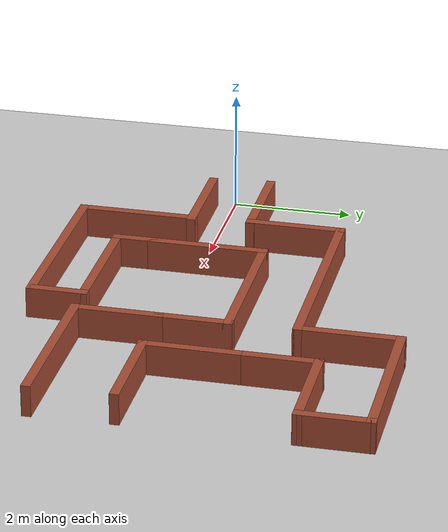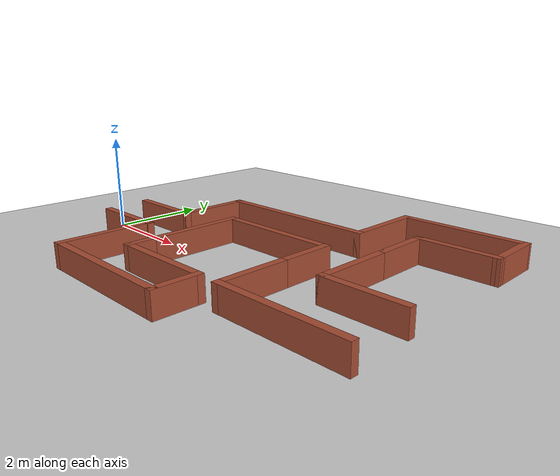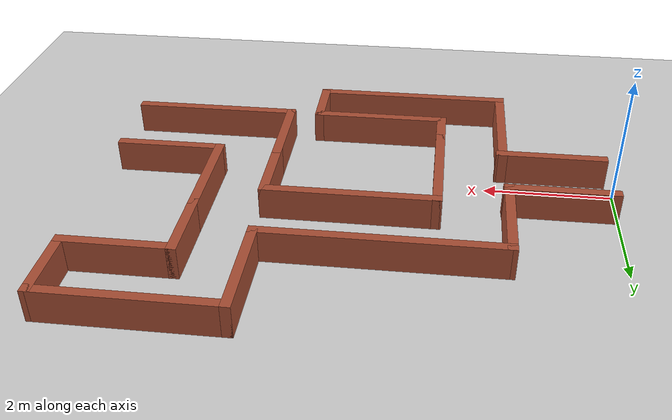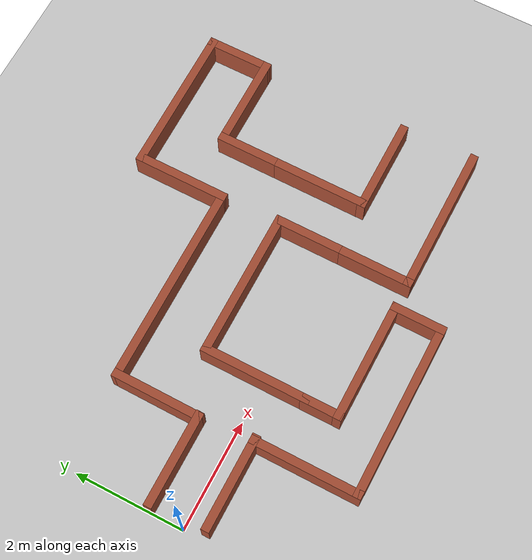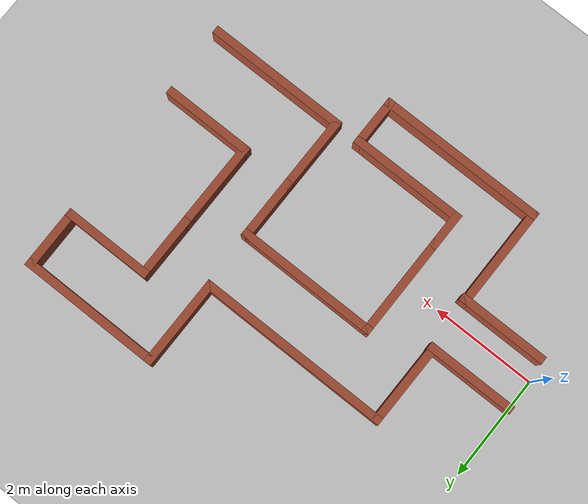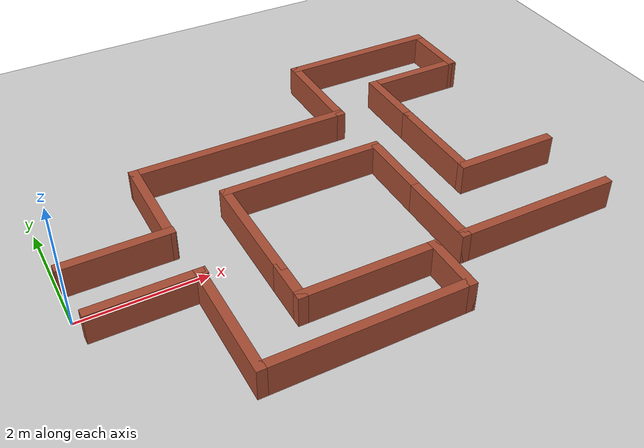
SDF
<sdf version="1.4">
  <world name="default">

    <scene>
      <ambient>0.4 0.4 0.4 1</ambient>
      <background>0.7 0.7 0.7 1</background>
      <shadows>true</shadows>
    </scene>

    <!-- A global light source -->
    <include>
      <uri>model://sun</uri>
    </include>

    <!-- A ground plane -->
    <include>
      <uri>model://ground_plane</uri>
    </include>

   <include>
      <uri>model://task3</uri>
      <pose> 4 0.75 0 0 0 0</pose>
      <scale>1 1 1</scale>
    </include>

    <physics type="ode">
      <real_time_update_rate>1000.0</real_time_update_rate>
      <max_step_size>0.001</max_step_size>
      <real_time_factor>1</real_time_factor>
      <ode>
        <solver>
          <type>quick</type>
          <iters>150</iters>
          <precon_iters>0</precon_iters>
          <sor>1.400000</sor>
          <use_dynamic_moi_rescaling>1</use_dynamic_moi_rescaling>
        </solver>
        <constraints>
          <cfm>0.00001</cfm>
          <erp>0.2</erp>
          <contact_max_correcting_vel>2000.000000</contact_max_correcting_vel>
          <contact_surface_layer>0.01000</contact_surface_layer>
        </constraints>
      </ode>
    </physics>
  </world>

</sdf>

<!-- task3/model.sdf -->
<sdf version='1.6'>
  <model name='task3'>
    <pose frame=''>3.76832 0.751116 0 0 -0 0</pose>
    <link name='Wall_0'>
      <collision name='Wall_0_Collision'>
        <geometry>
          <box>
            <size>1.75 0.15 1</size>
          </box>
        </geometry>
        <pose frame=''>0 0 0 0 -0 0</pose>
      </collision>
      <visual name='Wall_0_Visual'>
        <pose frame=''>0 0 0 0 -0 0</pose>
        <geometry>
          <box>
            <size>1.75 0.15 1</size>
          </box>
        </geometry>
        <material>
          <script>
            <uri>file://media/materials/scripts/gazebo.material</uri>
            <name>Gazebo/Bricks</name>
          </script>
          <ambient>1 1 1 1</ambient>
        </material>
        <meta>
          <layer>0</layer>
        </meta>
      </visual>
      <pose frame=''>-3.12832 -0.131116 0 0 -0 0</pose>
    </link>
    <link name='Wall_10'>
      <collision name='Wall_10_Collision'>
        <geometry>
          <box>
            <size>2 0.15 1</size>
          </box>
        </geometry>
        <pose frame=''>0 0 0 0 -0 0</pose>
      </collision>
      <visual name='Wall_10_Visual'>
        <pose frame=''>0 0 0 0 -0 0</pose>
        <geometry>
          <box>
            <size>2 0.15 1</size>
          </box>
        </geometry>
        <material>
          <script>
            <uri>file://media/materials/scripts/gazebo.material</uri>
            <name>Gazebo/Bricks</name>
          </script>
          <ambient>1 1 1 1</ambient>
        </material>
        <meta>
          <layer>0</layer>
        </meta>
      </visual>
      <pose frame=''>-1.27168 -0.614224 0 0 -0 1.5708</pose>
    </link>
    <link name='Wall_11'>
      <collision name='Wall_11_Collision'>
        <geometry>
          <box>
            <size>2.75 0.15 1</size>
          </box>
        </geometry>
        <pose frame=''>0 0 0 0 -0 0</pose>
      </collision>
      <visual name='Wall_11_Visual'>
        <pose frame=''>0 0 0 0 -0 0</pose>
        <geometry>
          <box>
            <size>2.75 0.15 1</size>
          </box>
        </geometry>
        <material>
          <script>
            <uri>file://media/materials/scripts/gazebo.material</uri>
            <name>Gazebo/Bricks</name>
          </script>
          <ambient>1 1 1 1</ambient>
        </material>
        <meta>
          <layer>0</layer>
        </meta>
      </visual>
      <pose frame=''>0.028318 0.310776 0 0 -0 0</pose>
    </link>
    <link name='Wall_12'>
      <collision name='Wall_12_Collision'>
        <geometry>
          <box>
            <size>1.25 0.15 1</size>
          </box>
        </geometry>
        <pose frame=''>0 0 0 0 -0 0</pose>
      </collision>
      <visual name='Wall_12_Visual'>
        <pose frame=''>0 0 0 0 -0 0</pose>
        <geometry>
          <box>
            <size>1.25 0.15 1</size>
          </box>
        </geometry>
        <material>
          <script>
            <uri>file://media/materials/scripts/gazebo.material</uri>
            <name>Gazebo/Bricks</name>
          </script>
          <ambient>1 1 1 1</ambient>
        </material>
        <meta>
          <layer>0</layer>
        </meta>
      </visual>
      <pose frame=''>1.32832 -0.239224 0 0 -0 -1.5708</pose>
    </link>
    <link name='Wall_14'>
      <collision name='Wall_14_Collision'>
        <geometry>
          <box>
            <size>1.75 0.15 1</size>
          </box>
        </geometry>
        <pose frame=''>0 0 0 0 -0 0</pose>
      </collision>
      <visual name='Wall_14_Visual'>
        <pose frame=''>0 0 0 0 -0 0</pose>
        <geometry>
          <box>
            <size>1.75 0.15 1</size>
          </box>
        </geometry>
        <material>
          <script>
            <uri>file://media/materials/scripts/gazebo.material</uri>
            <name>Gazebo/Bricks</name>
          </script>
          <ambient>1 1 1 1</ambient>
        </material>
        <meta>
          <layer>0</layer>
        </meta>
      </visual>
      <pose frame=''>2.27832 -0.009224 0 0 -0 1.5708</pose>
    </link>
    <link name='Wall_16'>
      <collision name='Wall_16_Collision'>
        <geometry>
          <box>
            <size>1.67003 0.15 1</size>
          </box>
        </geometry>
        <pose frame=''>0 0 0 0 -0 0</pose>
      </collision>
      <visual name='Wall_16_Visual'>
        <pose frame=''>0 0 0 0 -0 0</pose>
        <geometry>
          <box>
            <size>1.67003 0.15 1</size>
          </box>
        </geometry>
        <material>
          <script>
            <uri>file://media/materials/scripts/gazebo.material</uri>
            <name>Gazebo/Bricks</name>
          </script>
          <ambient>1 1 1 1</ambient>
        </material>
        <meta>
          <layer>0</layer>
        </meta>
      </visual>
      <pose frame=''>-2.33332 0.628884 0 0 -0 1.56422</pose>
    </link>
    <link name='Wall_17'>
      <collision name='Wall_17_Collision'>
        <geometry>
          <box>
            <size>3.75 0.15 1</size>
          </box>
        </geometry>
        <pose frame=''>0 0 0 0 -0 0</pose>
      </collision>
      <visual name='Wall_17_Visual'>
        <pose frame=''>0 0 0 0 -0 0</pose>
        <geometry>
          <box>
            <size>3.75 0.15 1</size>
          </box>
        </geometry>
        <material>
          <script>
            <uri>file://media/materials/scripts/gazebo.material</uri>
            <name>Gazebo/Bricks</name>
          </script>
          <ambient>1 1 1 1</ambient>
        </material>
        <meta>
          <layer>0</layer>
        </meta>
      </visual>
      <pose frame=''>-0.528318 1.38888 0 0 -0 0</pose>
    </link>
    <link name='Wall_18'>
      <collision name='Wall_18_Collision'>
        <geometry>
          <box>
            <size>1.75 0.15 1</size>
          </box>
        </geometry>
        <pose frame=''>0 0 0 0 -0 0</pose>
      </collision>
      <visual name='Wall_18_Visual'>
        <pose frame=''>0 0 0 0 -0 0</pose>
        <geometry>
          <box>
            <size>1.75 0.15 1</size>
          </box>
        </geometry>
        <material>
          <script>
            <uri>file://media/materials/scripts/gazebo.material</uri>
            <name>Gazebo/Bricks</name>
          </script>
          <ambient>1 1 1 1</ambient>
        </material>
        <meta>
          <layer>0</layer>
        </meta>
      </visual>
      <pose frame=''>1.27168 2.18888 0 0 -0 1.5708</pose>
    </link>
    <link name='Wall_19'>
      <collision name='Wall_19_Collision'>
        <geometry>
          <box>
            <size>2.75 0.15 1</size>
          </box>
        </geometry>
        <pose frame=''>0 0 0 0 -0 0</pose>
      </collision>
      <visual name='Wall_19_Visual'>
        <pose frame=''>0 0 0 0 -0 0</pose>
        <geometry>
          <box>
            <size>2.75 0.15 1</size>
          </box>
        </geometry>
        <material>
          <script>
            <uri>file://media/materials/scripts/gazebo.material</uri>
            <name>Gazebo/Bricks</name>
          </script>
          <ambient>1 1 1 1</ambient>
        </material>
        <meta>
          <layer>0</layer>
        </meta>
      </visual>
      <pose frame=''>2.57168 2.98888 0 0 -0 0</pose>
    </link>
    <link name='Wall_2'>
      <collision name='Wall_2_Collision'>
        <geometry>
          <box>
            <size>1.75 0.15 1</size>
          </box>
        </geometry>
        <pose frame=''>0 0 0 0 -0 0</pose>
      </collision>
      <visual name='Wall_2_Visual'>
        <pose frame=''>0 0 0 0 -0 0</pose>
        <geometry>
          <box>
            <size>1.75 0.15 1</size>
          </box>
        </geometry>
        <material>
          <script>
            <uri>file://media/materials/scripts/gazebo.material</uri>
            <name>Gazebo/Bricks</name>
          </script>
          <ambient>1 1 1 1</ambient>
        </material>
        <meta>
          <layer>0</layer>
        </meta>
      </visual>
      <pose frame=''>-3.04168 -1.11922 0 0 -0 0</pose>
    </link>
    <link name='Wall_22'>
      <collision name='Wall_22_Collision'>
        <geometry>
          <box>
            <size>1.25 0.15 1</size>
          </box>
        </geometry>
        <pose frame=''>0 0 0 0 -0 0</pose>
      </collision>
      <visual name='Wall_22_Visual'>
        <pose frame=''>0 0 0 0 -0 0</pose>
        <geometry>
          <box>
            <size>1.25 0.15 1</size>
          </box>
        </geometry>
        <material>
          <script>
            <uri>file://media/materials/scripts/gazebo.material</uri>
            <name>Gazebo/Bricks</name>
          </script>
          <ambient>1 1 1 1</ambient>
        </material>
        <meta>
          <layer>0</layer>
        </meta>
      </visual>
      <pose frame=''>2.27832 1.36078 0 0 -0 1.5708</pose>
    </link>
    <link name='Wall_23'>
      <collision name='Wall_23_Collision'>
        <geometry>
          <box>
            <size>1.75 0.15 1</size>
          </box>
        </geometry>
        <pose frame=''>0 0 0 0 -0 0</pose>
      </collision>
      <visual name='Wall_23_Visual'>
        <pose frame=''>0 0 0 0 -0 0</pose>
        <geometry>
          <box>
            <size>1.75 0.15 1</size>
          </box>
        </geometry>
        <material>
          <script>
            <uri>file://media/materials/scripts/gazebo.material</uri>
            <name>Gazebo/Bricks</name>
          </script>
          <ambient>1 1 1 1</ambient>
        </material>
        <meta>
          <layer>0</layer>
        </meta>
      </visual>
      <pose frame=''>3.07832 1.91078 0 0 -0 0</pose>
    </link>
    <link name='Wall_25'>
      <collision name='Wall_25_Collision'>
        <geometry>
          <box>
            <size>1.22813 0.15 1</size>
          </box>
        </geometry>
        <pose frame=''>0 0 0 0 -0 0</pose>
      </collision>
      <visual name='Wall_25_Visual'>
        <pose frame=''>0 0 0 0 -0 0</pose>
        <geometry>
          <box>
            <size>1.22813 0.15 1</size>
          </box>
        </geometry>
        <material>
          <script>
            <uri>file://media/materials/scripts/gazebo.material</uri>
            <name>Gazebo/Bricks</name>
          </script>
          <ambient>1 1 1 1</ambient>
        </material>
        <meta>
          <layer>0</layer>
        </meta>
      </visual>
      <pose frame=''>3.875 2.44983 0 0 -0 -1.56464</pose>
    </link>
    <link name='Wall_27'>
      <collision name='Wall_27_Collision'>
        <geometry>
          <box>
            <size>1.5 0.15 1</size>
          </box>
        </geometry>
        <pose frame=''>0 0 0 0 -0 0</pose>
      </collision>
      <visual name='Wall_27_Visual'>
        <pose frame=''>0 0 0 0 -0 0</pose>
        <geometry>
          <box>
            <size>1.5 0.15 1</size>
          </box>
        </geometry>
        <material>
          <script>
            <uri>file://media/materials/scripts/gazebo.material</uri>
            <name>Gazebo/Bricks</name>
          </script>
          <ambient>1 1 1 1</ambient>
        </material>
        <meta>
          <layer>0</layer>
        </meta>
      </visual>
      <pose frame=''>1.32832 -1.46422 0 0 -0 -1.5708</pose>
    </link>
    <link name='Wall_28'>
      <collision name='Wall_28_Collision'>
        <geometry>
          <box>
            <size>2.75 0.15 1</size>
          </box>
        </geometry>
        <pose frame=''>0 0 0 0 -0 0</pose>
      </collision>
      <visual name='Wall_28_Visual'>
        <pose frame=''>0 0 0 0 -0 0</pose>
        <geometry>
          <box>
            <size>2.75 0.15 1</size>
          </box>
        </geometry>
        <material>
          <script>
            <uri>file://media/materials/scripts/gazebo.material</uri>
            <name>Gazebo/Bricks</name>
          </script>
          <ambient>1 1 1 1</ambient>
        </material>
        <meta>
          <layer>0</layer>
        </meta>
      </visual>
      <pose frame=''>2.62832 -2.13922 0 0 -0 0</pose>
    </link>
    <link name='Wall_30'>
      <collision name='Wall_30_Collision'>
        <geometry>
          <box>
            <size>1.75 0.15 1</size>
          </box>
        </geometry>
        <pose frame=''>0 0 0 0 -0 0</pose>
      </collision>
      <visual name='Wall_30_Visual'>
        <pose frame=''>0 0 0 0 -0 0</pose>
        <geometry>
          <box>
            <size>1.75 0.15 1</size>
          </box>
        </geometry>
        <material>
          <script>
            <uri>file://media/materials/scripts/gazebo.material</uri>
            <name>Gazebo/Bricks</name>
          </script>
          <ambient>1 1 1 1</ambient>
        </material>
        <meta>
          <layer>0</layer>
        </meta>
      </visual>
      <pose frame=''>3.07832 -0.809224 0 0 -0 0</pose>
    </link>
    <link name='Wall_5'>
      <collision name='Wall_5_Collision'>
        <geometry>
          <box>
            <size>2.02024 0.15 1</size>
          </box>
        </geometry>
        <pose frame=''>0 0 0 0 -0 0</pose>
      </collision>
      <visual name='Wall_5_Visual'>
        <pose frame=''>0 0 0 0 -0 0</pose>
        <geometry>
          <box>
            <size>2.02024 0.15 1</size>
          </box>
        </geometry>
        <material>
          <script>
            <uri>file://media/materials/scripts/gazebo.material</uri>
            <name>Gazebo/Bricks</name>
          </script>
          <ambient>1 1 1 1</ambient>
        </material>
        <meta>
          <layer>0</layer>
        </meta>
      </visual>
      <pose frame=''>-2.27168 -2.05422 0 0 -0 -1.5708</pose>
    </link>
    <link name='Wall_6'>
      <collision name='Wall_6_Collision'>
        <geometry>
          <box>
            <size>3.25 0.15 1</size>
          </box>
        </geometry>
        <pose frame=''>0 0 0 0 -0 0</pose>
      </collision>
      <visual name='Wall_6_Visual'>
        <pose frame=''>0 0 0 0 -0 0</pose>
        <geometry>
          <box>
            <size>3.25 0.15 1</size>
          </box>
        </geometry>
        <material>
          <script>
            <uri>file://media/materials/scripts/gazebo.material</uri>
            <name>Gazebo/Bricks</name>
          </script>
          <ambient>1 1 1 1</ambient>
        </material>
        <meta>
          <layer>0</layer>
        </meta>
      </visual>
      <pose frame=''>-0.721682 -2.98922 0 0 -0 0</pose>
    </link>
    <link name='Wall_7'>
      <collision name='Wall_7_Collision'>
        <geometry>
          <box>
            <size>1 0.15 1</size>
          </box>
        </geometry>
        <pose frame=''>0 0 0 0 -0 0</pose>
      </collision>
      <visual name='Wall_7_Visual'>
        <pose frame=''>0 0 0 0 -0 0</pose>
        <geometry>
          <box>
            <size>1 0.15 1</size>
          </box>
        </geometry>
        <material>
          <script>
            <uri>file://media/materials/scripts/gazebo.material</uri>
            <name>Gazebo/Bricks</name>
          </script>
          <ambient>1 1 1 1</ambient>
        </material>
        <meta>
          <layer>0</layer>
        </meta>
      </visual>
      <pose frame=''>0.828318 -2.56422 0 0 -0 1.5708</pose>
    </link>
    <link name='Wall_8'>
      <collision name='Wall_8_Collision'>
        <geometry>
          <box>
            <size>2.25 0.15 1</size>
          </box>
        </geometry>
        <pose frame=''>0 0 0 0 -0 0</pose>
      </collision>
      <visual name='Wall_8_Visual'>
        <pose frame=''>0 0 0 0 -0 0</pose>
        <geometry>
          <box>
            <size>2.25 0.15 1</size>
          </box>
        </geometry>
        <material>
          <script>
            <uri>file://media/materials/scripts/gazebo.material</uri>
            <name>Gazebo/Bricks</name>
          </script>
          <ambient>1 1 1 1</ambient>
        </material>
        <meta>
          <layer>0</layer>
        </meta>
      </visual>
      <pose frame=''>-0.221682 -2.13922 0 0 -0 3.14159</pose>
    </link>
    <link name='Wall_9'>
      <collision name='Wall_9_Collision'>
        <geometry>
          <box>
            <size>0.75 0.15 1</size>
          </box>
        </geometry>
        <pose frame=''>0 0 0 0 -0 0</pose>
      </collision>
      <visual name='Wall_9_Visual'>
        <pose frame=''>0 0 0 0 -0 0</pose>
        <geometry>
          <box>
            <size>0.75 0.15 1</size>
          </box>
        </geometry>
        <material>
          <script>
            <uri>file://media/materials/scripts/gazebo.material</uri>
            <name>Gazebo/Bricks</name>
          </script>
          <ambient>1 1 1 1</ambient>
        </material>
        <meta>
          <layer>0</layer>
        </meta>
      </visual>
      <pose frame=''>-1.27168 -1.83922 0 0 -0 1.5708</pose>
    </link>
    <static>1</static>
  </model>
</sdf>
